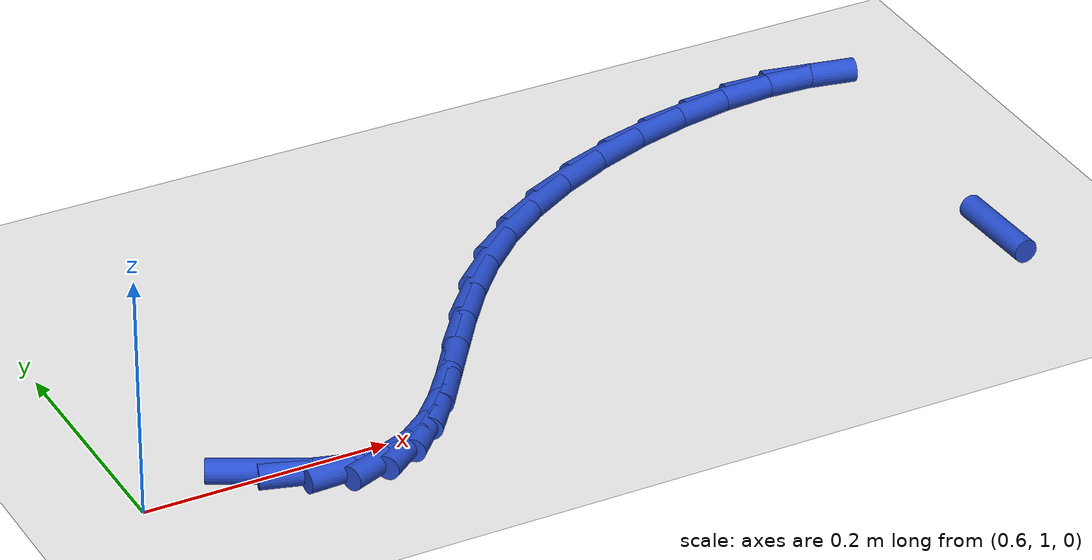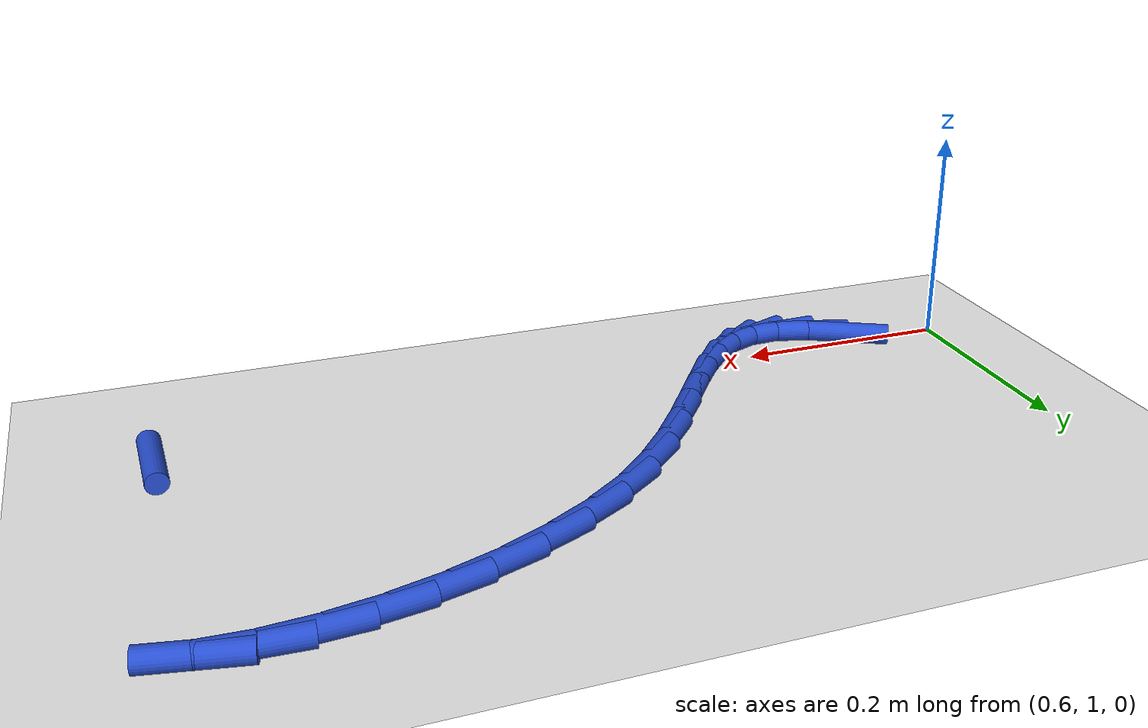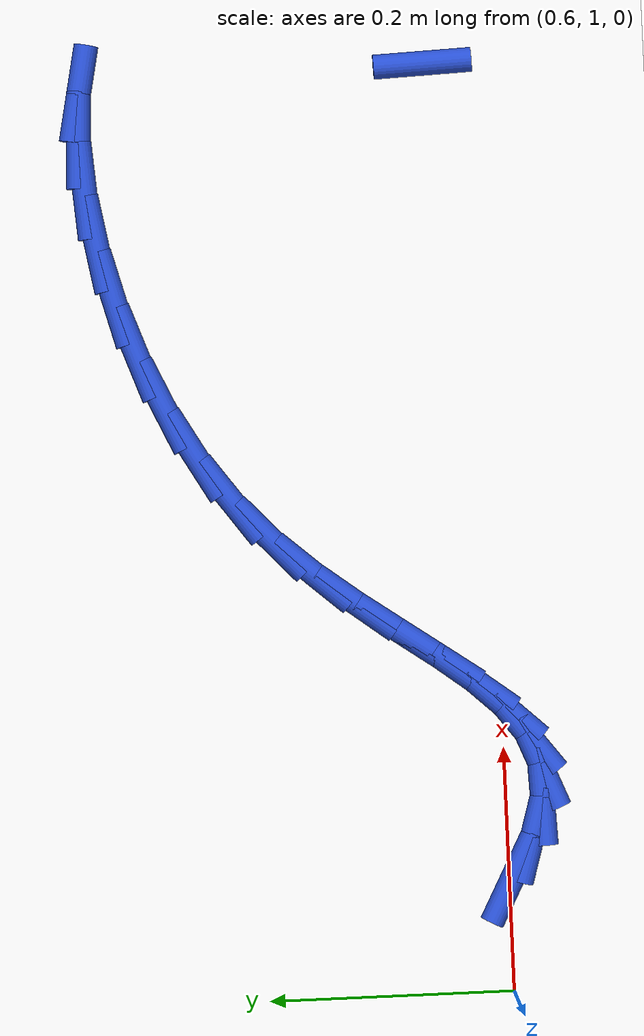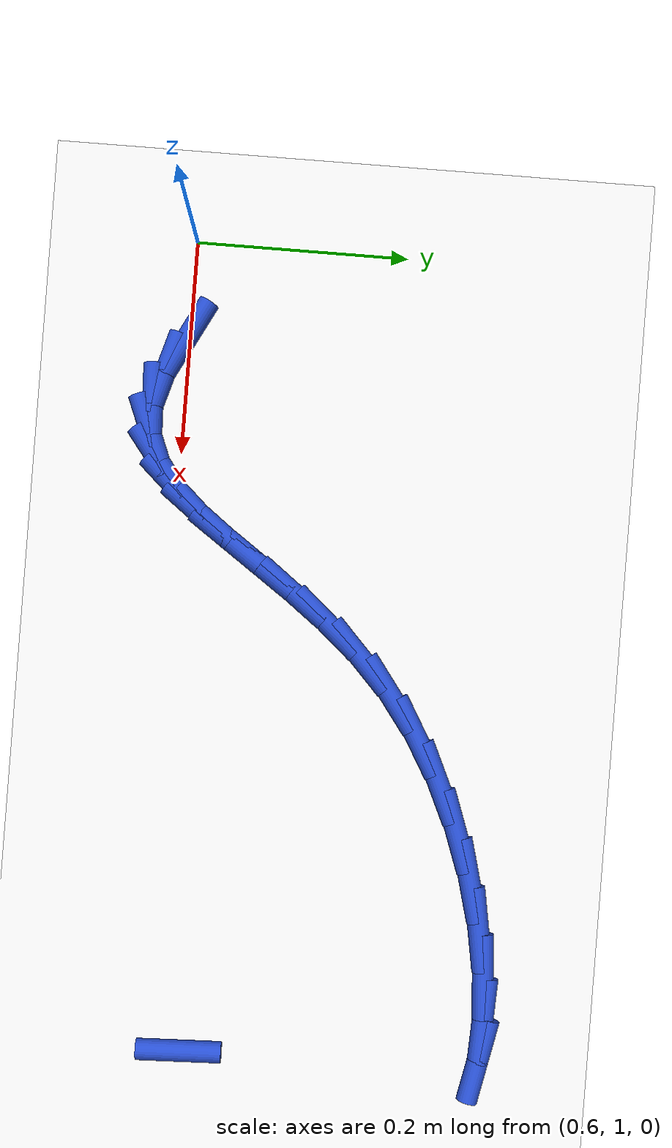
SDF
<sdf version="1.6">
 <world name="default">
  <model name="ground_plane">
   <static>1</static>
   <link name="link">
    <collision name="collision">
     <geometry><plane><normal>0 0 1</normal><size>100 100</size></plane></geometry>
     <surface><friction><ode><mu>100</mu><mu2>50</mu2></ode></friction></surface>
    </collision>
    <visual name="visual">
     <cast_shadows>0</cast_shadows>
     <geometry><plane><normal>0 0 1</normal><size>100 100</size></plane></geometry>
     <material>
      <script><uri>file://media/materials/scripts/gazebo.material</uri><name>Gazebo/WhiteGlow</name></script>
     </material>
    </visual>
   </link>
  </model>
  <model name="line">
   <link name="link_42">
    <pose>0.6932920038427162 0.997571738643482 0.01 0 1.57 -0.4813482849226254</pose>
    <collision name="collision">
     <geometry><cylinder><radius>0.01</radius><length>0.08</length></cylinder></geometry>
    </collision>
    <visual name="visual">
     <material>
      <script><name>Gazebo/Blue</name><uri>file://media/materials/scripts/gazebo.material</uri></script>
     </material>
     <geometry><cylinder><radius>0.01</radius><length>0.08</length></cylinder></geometry>
    </visual>
   </link>
   <link name="link_43">
    <pose>0.7277419293469974 0.9795776548746884 0.01 0 1.57 -0.283592251510044</pose>
    <collision name="collision">
     <geometry><cylinder><radius>0.01</radius><length>0.08</length></cylinder></geometry>
    </collision>
    <visual name="visual">
     <material>
      <script><name>Gazebo/Blue</name><uri>file://media/materials/scripts/gazebo.material</uri></script>
     </material>
     <geometry><cylinder><radius>0.01</radius><length>0.08</length></cylinder></geometry>
    </visual>
   </link>
   <link name="link_44">
    <pose>0.7590798604285746 0.9704442885070499 0.01 0 1.57 0.03650759873008971</pose>
    <collision name="collision">
     <geometry><cylinder><radius>0.01</radius><length>0.08</length></cylinder></geometry>
    </collision>
    <visual name="visual">
     <material>
      <script><name>Gazebo/Blue</name><uri>file://media/materials/scripts/gazebo.material</uri></script>
     </material>
     <geometry><cylinder><radius>0.01</radius><length>0.08</length></cylinder></geometry>
    </visual>
   </link>
   <link name="link_45">
    <pose>0.7867611531163278 0.9714553152398221 0.01 0 1.57 0.37846014052318083</pose>
    <collision name="collision">
     <geometry><cylinder><radius>0.01</radius><length>0.08</length></cylinder></geometry>
    </collision>
    <visual name="visual">
     <material>
      <script><name>Gazebo/Blue</name><uri>file://media/materials/scripts/gazebo.material</uri></script>
     </material>
     <geometry><cylinder><radius>0.01</radius><length>0.08</length></cylinder></geometry>
    </visual>
   </link>
   <link name="link_46">
    <pose>0.8115990493494645 0.9813315657807004 0.01 0 1.57 0.6494577219285567</pose>
    <collision name="collision">
     <geometry><cylinder><radius>0.01</radius><length>0.08</length></cylinder></geometry>
    </collision>
    <visual name="visual">
     <material>
      <script><name>Gazebo/Blue</name><uri>file://media/materials/scripts/gazebo.material</uri></script>
     </material>
     <geometry><cylinder><radius>0.01</radius><length>0.08</length></cylinder></geometry>
    </visual>
   </link>
   <link name="link_47">
    <pose>0.8344609210179161 0.9986917071194603 0.01 0 1.57 0.8231872077643589</pose>
    <collision name="collision">
     <geometry><cylinder><radius>0.01</radius><length>0.08</length></cylinder></geometry>
    </collision>
    <visual name="visual">
     <material>
      <script><name>Gazebo/Blue</name><uri>file://media/materials/scripts/gazebo.material</uri></script>
     </material>
     <geometry><cylinder><radius>0.01</radius><length>0.08</length></cylinder></geometry>
    </visual>
   </link>
   <link name="link_48">
    <pose>0.8562141400116151 1.0221544062458776 0.01 0 1.57 0.9188564925058843</pose>
    <collision name="collision">
     <geometry><cylinder><radius>0.01</radius><length>0.08</length></cylinder></geometry>
    </collision>
    <visual name="visual">
     <material>
      <script><name>Gazebo/Blue</name><uri>file://media/materials/scripts/gazebo.material</uri></script>
     </material>
     <geometry><cylinder><radius>0.01</radius><length>0.08</length></cylinder></geometry>
    </visual>
   </link>
   <link name="link_49">
    <pose>0.8777260782204938 1.0503383301497289 0.01 0 1.57 0.9585527607999449</pose>
    <collision name="collision">
     <geometry><cylinder><radius>0.01</radius><length>0.08</length></cylinder></geometry>
    </collision>
    <visual name="visual">
     <material>
      <script><name>Gazebo/Blue</name><uri>file://media/materials/scripts/gazebo.material</uri></script>
     </material>
     <geometry><cylinder><radius>0.01</radius><length>0.08</length></cylinder></geometry>
    </visual>
   </link>
   <link name="link_50">
    <pose>0.8998641075344842 1.0818621458207893 0.01 0 1.57 0.9561956699435422</pose>
    <collision name="collision">
     <geometry><cylinder><radius>0.01</radius><length>0.08</length></cylinder></geometry>
    </collision>
    <visual name="visual">
     <material>
      <script><name>Gazebo/Blue</name><uri>file://media/materials/scripts/gazebo.material</uri></script>
     </material>
     <geometry><cylinder><radius>0.01</radius><length>0.08</length></cylinder></geometry>
    </visual>
   </link>
   <link name="link_51">
    <pose>0.923495599843518 1.1153445202488348 0.01 0 1.57 0.9189369640931082</pose>
    <collision name="collision">
     <geometry><cylinder><radius>0.01</radius><length>0.08</length></cylinder></geometry>
    </collision>
    <visual name="visual">
     <material>
      <script><name>Gazebo/Blue</name><uri>file://media/materials/scripts/gazebo.material</uri></script>
     </material>
     <geometry><cylinder><radius>0.01</radius><length>0.08</length></cylinder></geometry>
    </visual>
   </link>
   <link name="link_52">
    <pose>0.9494879270375282 1.1494041204236414 0.01 0 1.57 0.8498927072878796</pose>
    <collision name="collision">
     <geometry><cylinder><radius>0.01</radius><length>0.08</length></cylinder></geometry>
    </collision>
    <visual name="visual">
     <material>
      <script><name>Gazebo/Blue</name><uri>file://media/materials/scripts/gazebo.material</uri></script>
     </material>
     <geometry><cylinder><radius>0.01</radius><length>0.08</length></cylinder></geometry>
    </visual>
   </link>
   <link name="link_53">
    <pose>0.9787084610064462 1.182659613334985 0.01 0 1.57 0.7505294227934914</pose>
    <collision name="collision">
     <geometry><cylinder><radius>0.01</radius><length>0.08</length></cylinder></geometry>
    </collision>
    <visual name="visual">
     <material>
      <script><name>Gazebo/Blue</name><uri>file://media/materials/scripts/gazebo.material</uri></script>
     </material>
     <geometry><cylinder><radius>0.01</radius><length>0.08</length></cylinder></geometry>
    </visual>
   </link>
   <link name="link_54">
    <pose>1.0120245191701374 1.2137296974897323 0.01 0 1.57 0.6321547613784081</pose>
    <collision name="collision">
     <geometry><cylinder><radius>0.01</radius><length>0.08</length></cylinder></geometry>
    </collision>
    <visual name="visual">
     <material>
      <script><name>Gazebo/Blue</name><uri>file://media/materials/scripts/gazebo.material</uri></script>
     </material>
     <geometry><cylinder><radius>0.01</radius><length>0.08</length></cylinder></geometry>
    </visual>
   </link>
   <link name="link_55">
    <pose>1.0498969725883187 1.2414682465570874 0.01 0 1.57 0.5253664358243341</pose>
    <collision name="collision">
     <geometry><cylinder><radius>0.01</radius><length>0.08</length></cylinder></geometry>
    </collision>
    <visual name="visual">
     <material>
      <script><name>Gazebo/Blue</name><uri>file://media/materials/scripts/gazebo.material</uri></script>
     </material>
     <geometry><cylinder><radius>0.01</radius><length>0.08</length></cylinder></geometry>
    </visual>
   </link>
   <link name="link_56">
    <pose>1.0914030597294173 1.26552972206034 0.01 0 1.57 0.4312248397256465</pose>
    <collision name="collision">
     <geometry><cylinder><radius>0.01</radius><length>0.08</length></cylinder></geometry>
    </collision>
    <visual name="visual">
     <material>
      <script><name>Gazebo/Blue</name><uri>file://media/materials/scripts/gazebo.material</uri></script>
     </material>
     <geometry><cylinder><radius>0.01</radius><length>0.08</length></cylinder></geometry>
    </visual>
   </link>
   <link name="link_57">
    <pose>1.135325857598065 1.2857387911803637 0.01 0 1.57 0.34432293093883287</pose>
    <collision name="collision">
     <geometry><cylinder><radius>0.01</radius><length>0.08</length></cylinder></geometry>
    </collision>
    <visual name="visual">
     <material>
      <script><name>Gazebo/Blue</name><uri>file://media/materials/scripts/gazebo.material</uri></script>
     </material>
     <geometry><cylinder><radius>0.01</radius><length>0.08</length></cylinder></geometry>
    </visual>
   </link>
   <link name="link_58">
    <pose>1.1804484431988933 1.3019201210980322 0.01 0 1.57 0.2595700411274996</pose>
    <collision name="collision">
     <geometry><cylinder><radius>0.01</radius><length>0.08</length></cylinder></geometry>
    </collision>
    <visual name="visual">
     <material>
      <script><name>Gazebo/Blue</name><uri>file://media/materials/scripts/gazebo.material</uri></script>
     </material>
     <geometry><cylinder><radius>0.01</radius><length>0.08</length></cylinder></geometry>
    </visual>
   </link>
   <link name="link_59">
    <pose>1.2255538935365347 1.3138983789942185 0.01 0 1.57 0.1715280085992618</pose>
    <collision name="collision">
     <geometry><cylinder><radius>0.01</radius><length>0.08</length></cylinder></geometry>
    </collision>
    <visual name="visual">
     <material>
      <script><name>Gazebo/Blue</name><uri>file://media/materials/scripts/gazebo.material</uri></script>
     </material>
     <geometry><cylinder><radius>0.01</radius><length>0.08</length></cylinder></geometry>
    </visual>
   </link>
   <link name="link_60">
    <pose>1.2694252856156198 1.321498232049797 0.01 0 1.57 0.07340925914924105</pose>
    <collision name="collision">
     <geometry><cylinder><radius>0.01</radius><length>0.08</length></cylinder></geometry>
    </collision>
    <visual name="visual">
     <material>
      <script><name>Gazebo/Blue</name><uri>file://media/materials/scripts/gazebo.material</uri></script>
     </material>
     <geometry><cylinder><radius>0.01</radius><length>0.08</length></cylinder></geometry>
    </visual>
   </link>
   <link name="link_61">
    <pose>1.3108456964407815 1.3245443474456406 0.01 0 1.57 -0.04454913707649983</pose>
    <collision name="collision">
     <geometry><cylinder><radius>0.01</radius><length>0.08</length></cylinder></geometry>
    </collision>
    <visual name="visual">
     <material>
      <script><name>Gazebo/Blue</name><uri>file://media/materials/scripts/gazebo.material</uri></script>
     </material>
     <geometry><cylinder><radius>0.01</radius><length>0.08</length></cylinder></geometry>
    </visual>
   </link>
   <link name="link_62">
    <pose>1.3485982030166508 1.322861392362623 0.01 0 1.57 -0.19779990248411605</pose>
    <collision name="collision">
     <geometry><cylinder><radius>0.01</radius><length>0.08</length></cylinder></geometry>
    </collision>
    <visual name="visual">
     <material>
      <script><name>Gazebo/Blue</name><uri>file://media/materials/scripts/gazebo.material</uri></script>
     </material>
     <geometry><cylinder><radius>0.01</radius><length>0.08</length></cylinder></geometry>
    </visual>
   </link>
   <link name="link_73">
    <pose>1.3613074215005216 1.04163132147262 0.01 0 1.57 -1.535478849969414</pose>
    <collision name="collision">
     <geometry><cylinder><radius>0.01</radius><length>0.08</length></cylinder></geometry>
    </collision>
    <visual name="visual">
     <material>
      <script><name>Gazebo/Blue</name><uri>file://media/materials/scripts/gazebo.material</uri></script>
     </material>
     <geometry><cylinder><radius>0.01</radius><length>0.08</length></cylinder></geometry>
    </visual>
   </link>
  </model>
 </world>
</sdf>
